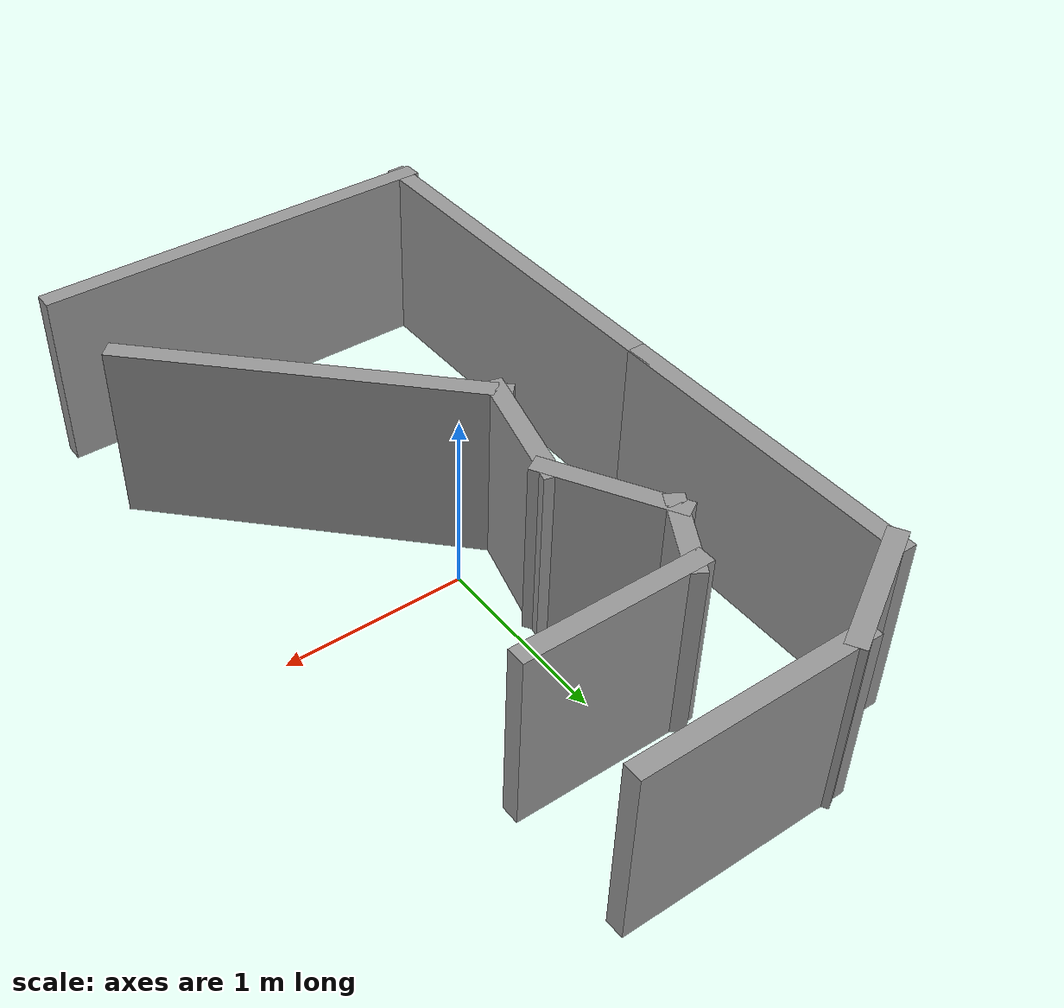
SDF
<?xml version='1.0'?>
<sdf version='1.7'>
  <model name='walls'>
    <link name='Wall_10'>
      <pose>0.35664 -0.75882 0 0 -0 2.35619</pose>
      <self_collide>0</self_collide>
      <kinematic>0</kinematic>
      <gravity>1</gravity>
      <enable_wind>0</enable_wind>
      <inertial>
        <mass>1</mass>
        <pose>0 0 0 0 -0 0</pose>
        <inertia>
          <ixx>1</ixx>
          <ixy>0</ixy>
          <ixz>0</ixz>
          <iyy>1</iyy>
          <iyz>0</iyz>
          <izz>1</izz>
        </inertia>
      </inertial>
      <visual name='Wall_10_Visual'>
        <pose>0 0 0.5 0 -0 0</pose>
        <geometry>
          <box>
            <size>2 0.1 1</size>
          </box>
        </geometry>
        <material>
          <script>
            <uri>file://media/materials/scripts/gazebo.material</uri>
            <name>Gazebo/Grey</name>
          </script>
          <ambient>1 1 1 1</ambient>
          <shader type='pixel'>
            <normal_map>__default__</normal_map>
          </shader>
        </material>
        <transparency>0</transparency>
        <cast_shadows>1</cast_shadows>
      </visual>
      <collision name='Wall_10_Collision'>
        <laser_retro>0</laser_retro>
        <max_contacts>10</max_contacts>
        <pose>0 0 0.5 0 -0 0</pose>
        <geometry>
          <box>
            <size>2 0.1 1</size>
          </box>
        </geometry>
        <surface>
          <friction>
            <ode>
              <mu>1</mu>
              <mu2>1</mu2>
              <fdir1>0 0 0</fdir1>
              <slip1>0</slip1>
              <slip2>0</slip2>
            </ode>
            <torsional>
              <coefficient>1</coefficient>
              <patch_radius>0</patch_radius>
              <surface_radius>0</surface_radius>
              <use_patch_radius>1</use_patch_radius>
              <ode>
                <slip>0</slip>
              </ode>
            </torsional>
          </friction>
          <bounce>
            <restitution_coefficient>0</restitution_coefficient>
            <threshold>1e+06</threshold>
          </bounce>
          <contact>
            <collide_without_contact>0</collide_without_contact>
            <collide_without_contact_bitmask>1</collide_without_contact_bitmask>
            <collide_bitmask>1</collide_bitmask>
            <ode>
              <soft_cfm>0</soft_cfm>
              <soft_erp>0.2</soft_erp>
              <kp>1e+13</kp>
              <kd>1</kd>
              <max_vel>0.01</max_vel>
              <min_depth>0</min_depth>
            </ode>
            <bullet>
              <split_impulse>1</split_impulse>
              <split_impulse_penetration_threshold>-0.01</split_impulse_penetration_threshold>
              <soft_cfm>0</soft_cfm>
              <soft_erp>0.2</soft_erp>
              <kp>1e+13</kp>
              <kd>1</kd>
            </bullet>
          </contact>
        </surface>
      </collision>
    </link>
    <link name='Wall_12'>
      <pose>0.01372 -2.01873 0 0 -0 3.14159</pose>
      <self_collide>0</self_collide>
      <kinematic>0</kinematic>
      <gravity>1</gravity>
      <enable_wind>0</enable_wind>
      <visual name='Wall_12_Visual'>
        <pose>0 0 0.5 0 -0 0</pose>
        <geometry>
          <box>
            <size>2.26002 0.1 1</size>
          </box>
        </geometry>
        <material>
          <script>
            <uri>file://media/materials/scripts/gazebo.material</uri>
            <name>Gazebo/Grey</name>
          </script>
          <ambient>1 1 1 1</ambient>
          <shader type='pixel'/>
        </material>
        <transparency>0</transparency>
        <cast_shadows>1</cast_shadows>
      </visual>
      <collision name='Wall_12_Collision'>
        <laser_retro>0</laser_retro>
        <max_contacts>10</max_contacts>
        <pose>0 0 0.5 0 -0 0</pose>
        <geometry>
          <box>
            <size>2.26002 0.1 1</size>
          </box>
        </geometry>
        <surface>
          <friction>
            <ode>
              <mu>1</mu>
              <mu2>1</mu2>
              <fdir1>0 0 0</fdir1>
              <slip1>0</slip1>
              <slip2>0</slip2>
            </ode>
            <torsional>
              <coefficient>1</coefficient>
              <patch_radius>0</patch_radius>
              <surface_radius>0</surface_radius>
              <use_patch_radius>1</use_patch_radius>
              <ode>
                <slip>0</slip>
              </ode>
            </torsional>
          </friction>
          <bounce>
            <restitution_coefficient>0</restitution_coefficient>
            <threshold>1e+06</threshold>
          </bounce>
          <contact>
            <collide_without_contact>0</collide_without_contact>
            <collide_without_contact_bitmask>1</collide_without_contact_bitmask>
            <collide_bitmask>1</collide_bitmask>
            <ode>
              <soft_cfm>0</soft_cfm>
              <soft_erp>0.2</soft_erp>
              <kp>1e+13</kp>
              <kd>1</kd>
              <max_vel>0.01</max_vel>
              <min_depth>0</min_depth>
            </ode>
            <bullet>
              <split_impulse>1</split_impulse>
              <split_impulse_penetration_threshold>-0.01</split_impulse_penetration_threshold>
              <soft_cfm>0</soft_cfm>
              <soft_erp>0.2</soft_erp>
              <kp>1e+13</kp>
              <kd>1</kd>
            </bullet>
          </contact>
        </surface>
      </collision>
    </link>
    <link name='Wall_13'>
      <pose>-1.04128 -0.958726 0 0 -0 1.5708</pose>
      <self_collide>0</self_collide>
      <kinematic>0</kinematic>
      <gravity>1</gravity>
      <enable_wind>0</enable_wind>
      <visual name='Wall_13_Visual'>
        <pose>0 0 0.5 0 -0 0</pose>
        <geometry>
          <box>
            <size>2.25 0.1 1</size>
          </box>
        </geometry>
        <material>
          <script>
            <uri>file://media/materials/scripts/gazebo.material</uri>
            <name>Gazebo/Grey</name>
          </script>
          <ambient>1 1 1 1</ambient>
          <shader type='pixel'/>
        </material>
        <transparency>0</transparency>
        <cast_shadows>1</cast_shadows>
      </visual>
      <collision name='Wall_13_Collision'>
        <laser_retro>0</laser_retro>
        <max_contacts>10</max_contacts>
        <pose>0 0 0.5 0 -0 0</pose>
        <geometry>
          <box>
            <size>2.25 0.1 1</size>
          </box>
        </geometry>
        <surface>
          <friction>
            <ode>
              <mu>1</mu>
              <mu2>1</mu2>
              <fdir1>0 0 0</fdir1>
              <slip1>0</slip1>
              <slip2>0</slip2>
            </ode>
            <torsional>
              <coefficient>1</coefficient>
              <patch_radius>0</patch_radius>
              <surface_radius>0</surface_radius>
              <use_patch_radius>1</use_patch_radius>
              <ode>
                <slip>0</slip>
              </ode>
            </torsional>
          </friction>
          <bounce>
            <restitution_coefficient>0</restitution_coefficient>
            <threshold>1e+06</threshold>
          </bounce>
          <contact>
            <collide_without_contact>0</collide_without_contact>
            <collide_without_contact_bitmask>1</collide_without_contact_bitmask>
            <collide_bitmask>1</collide_bitmask>
            <ode>
              <soft_cfm>0</soft_cfm>
              <soft_erp>0.2</soft_erp>
              <kp>1e+13</kp>
              <kd>1</kd>
              <max_vel>0.01</max_vel>
              <min_depth>0</min_depth>
            </ode>
            <bullet>
              <split_impulse>1</split_impulse>
              <split_impulse_penetration_threshold>-0.01</split_impulse_penetration_threshold>
              <soft_cfm>0</soft_cfm>
              <soft_erp>0.2</soft_erp>
              <kp>1e+13</kp>
              <kd>1</kd>
            </bullet>
          </contact>
        </surface>
      </collision>
    </link>
    <link name='Wall_19'>
      <pose>-1.04128 0.891274 0 0 -0 1.5708</pose>
      <self_collide>0</self_collide>
      <kinematic>0</kinematic>
      <gravity>1</gravity>
      <enable_wind>0</enable_wind>
      <visual name='Wall_19_Visual'>
        <pose>0 0 0.5 0 -0 0</pose>
        <geometry>
          <box>
            <size>1.75 0.1 1</size>
          </box>
        </geometry>
        <material>
          <script>
            <uri>file://media/materials/scripts/gazebo.material</uri>
            <name>Gazebo/Grey</name>
          </script>
          <ambient>1 1 1 1</ambient>
          <shader type='pixel'/>
        </material>
        <transparency>0</transparency>
        <cast_shadows>1</cast_shadows>
      </visual>
      <collision name='Wall_19_Collision'>
        <laser_retro>0</laser_retro>
        <max_contacts>10</max_contacts>
        <pose>0 0 0.5 0 -0 0</pose>
        <geometry>
          <box>
            <size>1.75 0.1 1</size>
          </box>
        </geometry>
        <surface>
          <friction>
            <ode>
              <mu>1</mu>
              <mu2>1</mu2>
              <fdir1>0 0 0</fdir1>
              <slip1>0</slip1>
              <slip2>0</slip2>
            </ode>
            <torsional>
              <coefficient>1</coefficient>
              <patch_radius>0</patch_radius>
              <surface_radius>0</surface_radius>
              <use_patch_radius>1</use_patch_radius>
              <ode>
                <slip>0</slip>
              </ode>
            </torsional>
          </friction>
          <bounce>
            <restitution_coefficient>0</restitution_coefficient>
            <threshold>1e+06</threshold>
          </bounce>
          <contact>
            <collide_without_contact>0</collide_without_contact>
            <collide_without_contact_bitmask>1</collide_without_contact_bitmask>
            <collide_bitmask>1</collide_bitmask>
            <ode>
              <soft_cfm>0</soft_cfm>
              <soft_erp>0.2</soft_erp>
              <kp>1e+13</kp>
              <kd>1</kd>
              <max_vel>0.01</max_vel>
              <min_depth>0</min_depth>
            </ode>
            <bullet>
              <split_impulse>1</split_impulse>
              <split_impulse_penetration_threshold>-0.01</split_impulse_penetration_threshold>
              <soft_cfm>0</soft_cfm>
              <soft_erp>0.2</soft_erp>
              <kp>1e+13</kp>
              <kd>1</kd>
            </bullet>
          </contact>
        </surface>
      </collision>
    </link>
    <link name='Wall_21'>
      <pose>-0.781472 1.84127 0 0 -0 0.523599</pose>
      <self_collide>0</self_collide>
      <kinematic>0</kinematic>
      <gravity>1</gravity>
      <enable_wind>0</enable_wind>
      <visual name='Wall_21_Visual'>
        <pose>0 0 0.5 0 -0 0</pose>
        <geometry>
          <box>
            <size>0.75 0.1 1</size>
          </box>
        </geometry>
        <material>
          <script>
            <uri>file://media/materials/scripts/gazebo.material</uri>
            <name>Gazebo/Grey</name>
          </script>
          <ambient>1 1 1 1</ambient>
          <shader type='pixel'/>
        </material>
        <transparency>0</transparency>
        <cast_shadows>1</cast_shadows>
      </visual>
      <collision name='Wall_21_Collision'>
        <laser_retro>0</laser_retro>
        <max_contacts>10</max_contacts>
        <pose>0 0 0.5 0 -0 0</pose>
        <geometry>
          <box>
            <size>0.75 0.1 1</size>
          </box>
        </geometry>
        <surface>
          <friction>
            <ode>
              <mu>1</mu>
              <mu2>1</mu2>
              <fdir1>0 0 0</fdir1>
              <slip1>0</slip1>
              <slip2>0</slip2>
            </ode>
            <torsional>
              <coefficient>1</coefficient>
              <patch_radius>0</patch_radius>
              <surface_radius>0</surface_radius>
              <use_patch_radius>1</use_patch_radius>
              <ode>
                <slip>0</slip>
              </ode>
            </torsional>
          </friction>
          <bounce>
            <restitution_coefficient>0</restitution_coefficient>
            <threshold>1e+06</threshold>
          </bounce>
          <contact>
            <collide_without_contact>0</collide_without_contact>
            <collide_without_contact_bitmask>1</collide_without_contact_bitmask>
            <collide_bitmask>1</collide_bitmask>
            <ode>
              <soft_cfm>0</soft_cfm>
              <soft_erp>0.2</soft_erp>
              <kp>1e+13</kp>
              <kd>1</kd>
              <max_vel>0.01</max_vel>
              <min_depth>0</min_depth>
            </ode>
            <bullet>
              <split_impulse>1</split_impulse>
              <split_impulse_penetration_threshold>-0.01</split_impulse_penetration_threshold>
              <soft_cfm>0</soft_cfm>
              <soft_erp>0.2</soft_erp>
              <kp>1e+13</kp>
              <kd>1</kd>
            </bullet>
          </contact>
        </surface>
      </collision>
    </link>
    <link name='Wall_22'>
      <pose>0.028335 1.99127 0 0 -0 0</pose>
      <self_collide>0</self_collide>
      <kinematic>0</kinematic>
      <gravity>1</gravity>
      <enable_wind>0</enable_wind>
      <visual name='Wall_22_Visual'>
        <pose>0 0 0.5 0 -0 0</pose>
        <geometry>
          <box>
            <size>1.25 0.1 1</size>
          </box>
        </geometry>
        <material>
          <script>
            <uri>file://media/materials/scripts/gazebo.material</uri>
            <name>Gazebo/Grey</name>
          </script>
          <ambient>1 1 1 1</ambient>
          <shader type='pixel'/>
        </material>
        <transparency>0</transparency>
        <cast_shadows>1</cast_shadows>
      </visual>
      <collision name='Wall_22_Collision'>
        <laser_retro>0</laser_retro>
        <max_contacts>10</max_contacts>
        <pose>0 0 0.5 0 -0 0</pose>
        <geometry>
          <box>
            <size>1.25 0.1 1</size>
          </box>
        </geometry>
        <surface>
          <friction>
            <ode>
              <mu>1</mu>
              <mu2>1</mu2>
              <fdir1>0 0 0</fdir1>
              <slip1>0</slip1>
              <slip2>0</slip2>
            </ode>
            <torsional>
              <coefficient>1</coefficient>
              <patch_radius>0</patch_radius>
              <surface_radius>0</surface_radius>
              <use_patch_radius>1</use_patch_radius>
              <ode>
                <slip>0</slip>
              </ode>
            </torsional>
          </friction>
          <bounce>
            <restitution_coefficient>0</restitution_coefficient>
            <threshold>1e+06</threshold>
          </bounce>
          <contact>
            <collide_without_contact>0</collide_without_contact>
            <collide_without_contact_bitmask>1</collide_without_contact_bitmask>
            <collide_bitmask>1</collide_bitmask>
            <ode>
              <soft_cfm>0</soft_cfm>
              <soft_erp>0.2</soft_erp>
              <kp>1e+13</kp>
              <kd>1</kd>
              <max_vel>0.01</max_vel>
              <min_depth>0</min_depth>
            </ode>
            <bullet>
              <split_impulse>1</split_impulse>
              <split_impulse_penetration_threshold>-0.01</split_impulse_penetration_threshold>
              <soft_cfm>0</soft_cfm>
              <soft_erp>0.2</soft_erp>
              <kp>1e+13</kp>
              <kd>1</kd>
            </bullet>
          </contact>
        </surface>
      </collision>
    </link>
    <link name='Wall_24'>
      <pose>-0.219788 0.185031 0 0 -0 1.309</pose>
      <self_collide>0</self_collide>
      <kinematic>0</kinematic>
      <gravity>1</gravity>
      <enable_wind>0</enable_wind>
      <visual name='Wall_24_Visual'>
        <pose>0 0 0.5 0 -0 0</pose>
        <geometry>
          <box>
            <size>0.75 0.1 1</size>
          </box>
        </geometry>
        <material>
          <script>
            <uri>file://media/materials/scripts/gazebo.material</uri>
            <name>Gazebo/Grey</name>
          </script>
          <ambient>1 1 1 1</ambient>
          <shader type='pixel'/>
        </material>
        <transparency>0</transparency>
        <cast_shadows>1</cast_shadows>
      </visual>
      <collision name='Wall_24_Collision'>
        <laser_retro>0</laser_retro>
        <max_contacts>10</max_contacts>
        <pose>0 0 0.5 0 -0 0</pose>
        <geometry>
          <box>
            <size>0.75 0.1 1</size>
          </box>
        </geometry>
        <surface>
          <friction>
            <ode>
              <mu>1</mu>
              <mu2>1</mu2>
              <fdir1>0 0 0</fdir1>
              <slip1>0</slip1>
              <slip2>0</slip2>
            </ode>
            <torsional>
              <coefficient>1</coefficient>
              <patch_radius>0</patch_radius>
              <surface_radius>0</surface_radius>
              <use_patch_radius>1</use_patch_radius>
              <ode>
                <slip>0</slip>
              </ode>
            </torsional>
          </friction>
          <bounce>
            <restitution_coefficient>0</restitution_coefficient>
            <threshold>1e+06</threshold>
          </bounce>
          <contact>
            <collide_without_contact>0</collide_without_contact>
            <collide_without_contact_bitmask>1</collide_without_contact_bitmask>
            <collide_bitmask>1</collide_bitmask>
            <ode>
              <soft_cfm>0</soft_cfm>
              <soft_erp>0.2</soft_erp>
              <kp>1e+13</kp>
              <kd>1</kd>
              <max_vel>0.01</max_vel>
              <min_depth>0</min_depth>
            </ode>
            <bullet>
              <split_impulse>1</split_impulse>
              <split_impulse_penetration_threshold>-0.01</split_impulse_penetration_threshold>
              <soft_cfm>0</soft_cfm>
              <soft_erp>0.2</soft_erp>
              <kp>1e+13</kp>
              <kd>1</kd>
            </bullet>
          </contact>
        </surface>
      </collision>
    </link>
    <link name='Wall_25'>
      <pose>-0.292142 0.734617 0 0 -0 2.0944</pose>
      <self_collide>0</self_collide>
      <kinematic>0</kinematic>
      <gravity>1</gravity>
      <enable_wind>0</enable_wind>
      <visual name='Wall_25_Visual'>
        <pose>0 0 0.5 0 -0 0</pose>
        <geometry>
          <box>
            <size>0.75 0.1 1</size>
          </box>
        </geometry>
        <material>
          <script>
            <uri>file://media/materials/scripts/gazebo.material</uri>
            <name>Gazebo/Grey</name>
          </script>
          <ambient>1 1 1 1</ambient>
          <shader type='pixel'/>
        </material>
        <transparency>0</transparency>
        <cast_shadows>1</cast_shadows>
      </visual>
      <collision name='Wall_25_Collision'>
        <laser_retro>0</laser_retro>
        <max_contacts>10</max_contacts>
        <pose>0 0 0.5 0 -0 0</pose>
        <geometry>
          <box>
            <size>0.75 0.1 1</size>
          </box>
        </geometry>
        <surface>
          <friction>
            <ode>
              <mu>1</mu>
              <mu2>1</mu2>
              <fdir1>0 0 0</fdir1>
              <slip1>0</slip1>
              <slip2>0</slip2>
            </ode>
            <torsional>
              <coefficient>1</coefficient>
              <patch_radius>0</patch_radius>
              <surface_radius>0</surface_radius>
              <use_patch_radius>1</use_patch_radius>
              <ode>
                <slip>0</slip>
              </ode>
            </torsional>
          </friction>
          <bounce>
            <restitution_coefficient>0</restitution_coefficient>
            <threshold>1e+06</threshold>
          </bounce>
          <contact>
            <collide_without_contact>0</collide_without_contact>
            <collide_without_contact_bitmask>1</collide_without_contact_bitmask>
            <collide_bitmask>1</collide_bitmask>
            <ode>
              <soft_cfm>0</soft_cfm>
              <soft_erp>0.2</soft_erp>
              <kp>1e+13</kp>
              <kd>1</kd>
              <max_vel>0.01</max_vel>
              <min_depth>0</min_depth>
            </ode>
            <bullet>
              <split_impulse>1</split_impulse>
              <split_impulse_penetration_threshold>-0.01</split_impulse_penetration_threshold>
              <soft_cfm>0</soft_cfm>
              <soft_erp>0.2</soft_erp>
              <kp>1e+13</kp>
              <kd>1</kd>
            </bullet>
          </contact>
        </surface>
      </collision>
    </link>
    <link name='Wall_26'>
      <pose>-0.354642 1.14598 0 0 -0 1.0472</pose>
      <self_collide>0</self_collide>
      <kinematic>0</kinematic>
      <gravity>1</gravity>
      <enable_wind>0</enable_wind>
      <visual name='Wall_26_Visual'>
        <pose>0 0 0.5 0 -0 0</pose>
        <geometry>
          <box>
            <size>0.5 0.1 1</size>
          </box>
        </geometry>
        <material>
          <script>
            <uri>file://media/materials/scripts/gazebo.material</uri>
            <name>Gazebo/Grey</name>
          </script>
          <ambient>1 1 1 1</ambient>
          <shader type='pixel'/>
        </material>
        <transparency>0</transparency>
        <cast_shadows>1</cast_shadows>
      </visual>
      <collision name='Wall_26_Collision'>
        <laser_retro>0</laser_retro>
        <max_contacts>10</max_contacts>
        <pose>0 0 0.5 0 -0 0</pose>
        <geometry>
          <box>
            <size>0.5 0.1 1</size>
          </box>
        </geometry>
        <surface>
          <friction>
            <ode>
              <mu>1</mu>
              <mu2>1</mu2>
              <fdir1>0 0 0</fdir1>
              <slip1>0</slip1>
              <slip2>0</slip2>
            </ode>
            <torsional>
              <coefficient>1</coefficient>
              <patch_radius>0</patch_radius>
              <surface_radius>0</surface_radius>
              <use_patch_radius>1</use_patch_radius>
              <ode>
                <slip>0</slip>
              </ode>
            </torsional>
          </friction>
          <bounce>
            <restitution_coefficient>0</restitution_coefficient>
            <threshold>1e+06</threshold>
          </bounce>
          <contact>
            <collide_without_contact>0</collide_without_contact>
            <collide_without_contact_bitmask>1</collide_without_contact_bitmask>
            <collide_bitmask>1</collide_bitmask>
            <ode>
              <soft_cfm>0</soft_cfm>
              <soft_erp>0.2</soft_erp>
              <kp>1e+13</kp>
              <kd>1</kd>
              <max_vel>0.01</max_vel>
              <min_depth>0</min_depth>
            </ode>
            <bullet>
              <split_impulse>1</split_impulse>
              <split_impulse_penetration_threshold>-0.01</split_impulse_penetration_threshold>
              <soft_cfm>0</soft_cfm>
              <soft_erp>0.2</soft_erp>
              <kp>1e+13</kp>
              <kd>1</kd>
            </bullet>
          </contact>
        </surface>
      </collision>
    </link>
    <link name='Wall_27'>
      <pose>0.157858 1.29753 0 0 -0 0</pose>
      <self_collide>0</self_collide>
      <kinematic>0</kinematic>
      <gravity>1</gravity>
      <enable_wind>0</enable_wind>
      <visual name='Wall_27_Visual'>
        <pose>0 0 0.5 0 -0 0</pose>
        <geometry>
          <box>
            <size>1 0.1 1</size>
          </box>
        </geometry>
        <material>
          <script>
            <uri>file://media/materials/scripts/gazebo.material</uri>
            <name>Gazebo/Grey</name>
          </script>
          <ambient>1 1 1 1</ambient>
          <shader type='pixel'/>
        </material>
        <transparency>0</transparency>
        <cast_shadows>1</cast_shadows>
      </visual>
      <collision name='Wall_27_Collision'>
        <laser_retro>0</laser_retro>
        <max_contacts>10</max_contacts>
        <pose>0 0 0.5 0 -0 0</pose>
        <geometry>
          <box>
            <size>1 0.1 1</size>
          </box>
        </geometry>
        <surface>
          <friction>
            <ode>
              <mu>1</mu>
              <mu2>1</mu2>
              <fdir1>0 0 0</fdir1>
              <slip1>0</slip1>
              <slip2>0</slip2>
            </ode>
            <torsional>
              <coefficient>1</coefficient>
              <patch_radius>0</patch_radius>
              <surface_radius>0</surface_radius>
              <use_patch_radius>1</use_patch_radius>
              <ode>
                <slip>0</slip>
              </ode>
            </torsional>
          </friction>
          <bounce>
            <restitution_coefficient>0</restitution_coefficient>
            <threshold>1e+06</threshold>
          </bounce>
          <contact>
            <collide_without_contact>0</collide_without_contact>
            <collide_without_contact_bitmask>1</collide_without_contact_bitmask>
            <collide_bitmask>1</collide_bitmask>
            <ode>
              <soft_cfm>0</soft_cfm>
              <soft_erp>0.2</soft_erp>
              <kp>1e+13</kp>
              <kd>1</kd>
              <max_vel>0.01</max_vel>
              <min_depth>0</min_depth>
            </ode>
            <bullet>
              <split_impulse>1</split_impulse>
              <split_impulse_penetration_threshold>-0.01</split_impulse_penetration_threshold>
              <soft_cfm>0</soft_cfm>
              <soft_erp>0.2</soft_erp>
              <kp>1e+13</kp>
              <kd>1</kd>
            </bullet>
          </contact>
        </surface>
      </collision>
    </link>
    <static>1</static>
    <allow_auto_disable>1</allow_auto_disable>
  </model>
</sdf>
